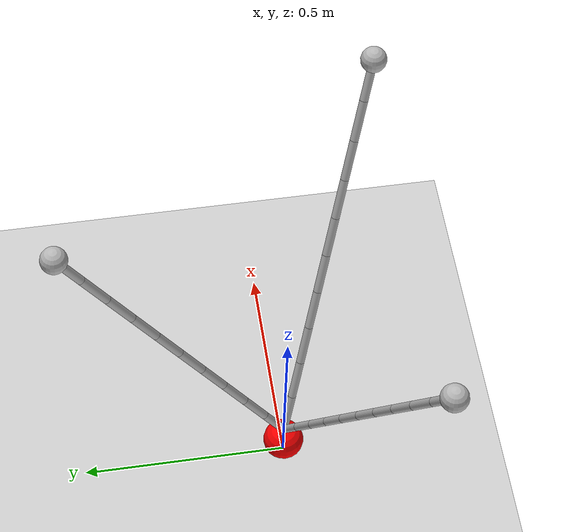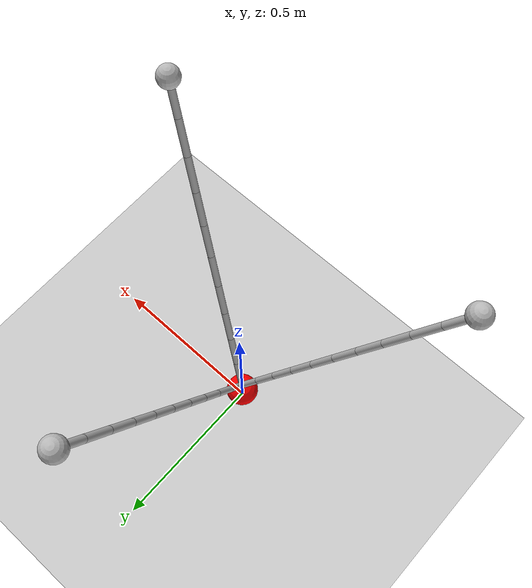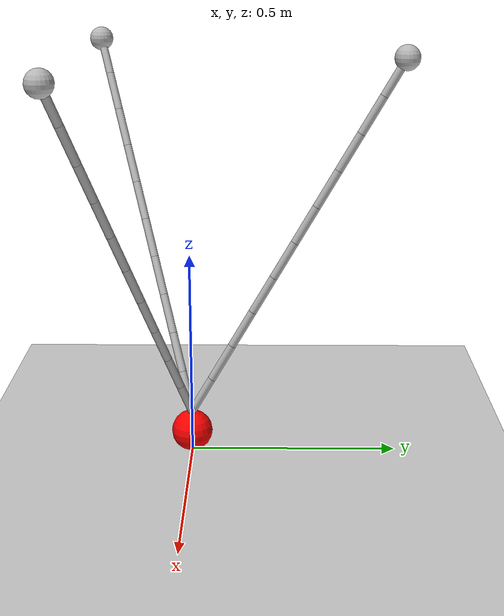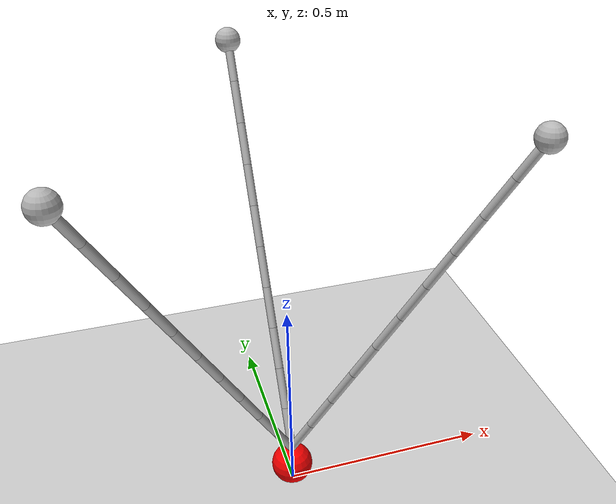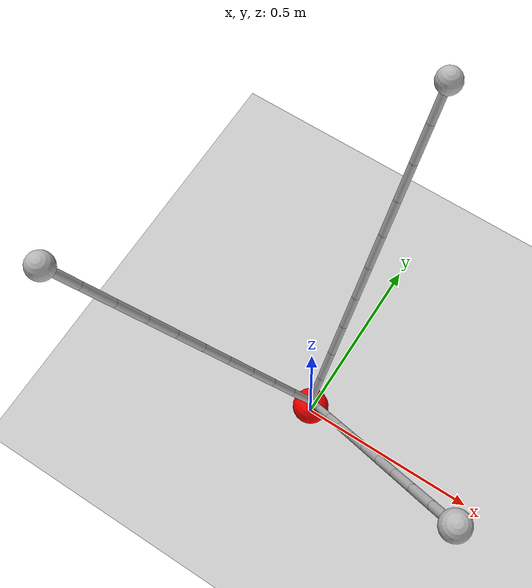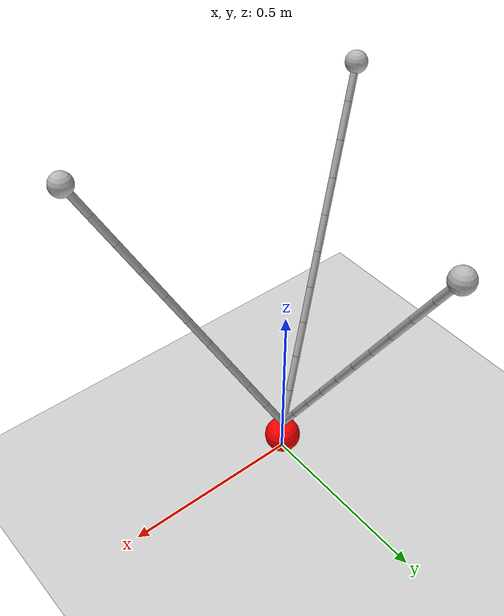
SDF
<sdf version='1.9'>
  <world name='mqsls'>
    <physics type="ode">
      <max_step_size>0.01</max_step_size>
      <real_time_factor>1.0</real_time_factor>
      <real_time_update_rate>250</real_time_update_rate>
    </physics>
    <plugin name='gz::sim::systems::Physics' filename='gz-sim-physics-system'/>
    <plugin name='gz::sim::systems::UserCommands' filename='gz-sim-user-commands-system'/>
    <plugin name='gz::sim::systems::SceneBroadcaster' filename='gz-sim-scene-broadcaster-system'/>
    <plugin name='gz::sim::systems::Contact' filename='gz-sim-contact-system'/>
    <plugin name='gz::sim::systems::Imu' filename='gz-sim-imu-system'/>
    <plugin name='gz::sim::systems::AirPressure' filename='gz-sim-air-pressure-system'/>
    <plugin name='gz::sim::systems::Sensors' filename='gz-sim-sensors-system'>
      <render_engine>ogre2</render_engine>
    </plugin>
    <gui fullscreen='false'>
      <plugin name='3D View' filename='GzScene3D'>
        <gz-gui>
          <title>3D View</title>
          <property type='bool' key='showTitleBar'>0</property>
          <property type='string' key='state'>docked</property>
        </gz-gui>
        <engine>ogre2</engine>
        <scene>scene</scene>
        <ambient_light>0.5984631152222222 0.5984631152222222 0.5984631152222222</ambient_light>
        <background_color>0.8984631152222222 0.8984631152222222 0.8984631152222222</background_color>
        <camera_pose>-6 0 6 0 0.5 0</camera_pose>
      </plugin>
      <plugin name='World control' filename='WorldControl'>
        <gz-gui>
          <title>World control</title>
          <property type='bool' key='showTitleBar'>0</property>
          <property type='bool' key='resizable'>0</property>
          <property type='double' key='height'>72</property>
          <property type='double' key='width'>121</property>
          <property type='double' key='z'>1</property>
          <property type='string' key='state'>floating</property>
          <anchors target='3D View'>
            <line own='left' target='left'/>
            <line own='bottom' target='bottom'/>
          </anchors>
        </gz-gui>
        <play_pause>1</play_pause>
        <step>1</step>
        <start_paused>1</start_paused>
      </plugin>
      <plugin name='World stats' filename='WorldStats'>
        <gz-gui>
          <title>World stats</title>
          <property type='bool' key='showTitleBar'>0</property>
          <property type='bool' key='resizable'>0</property>
          <property type='double' key='height'>110</property>
          <property type='double' key='width'>290</property>
          <property type='double' key='z'>1</property>
          <property type='string' key='state'>floating</property>
          <anchors target='3D View'>
            <line own='right' target='right'/>
            <line own='bottom' target='bottom'/>
          </anchors>
        </gz-gui>
        <sim_time>1</sim_time>
        <real_time>1</real_time>
        <real_time_factor>1</real_time_factor>
        <iterations>1</iterations>
      </plugin>
      <plugin name='Entity tree' filename='EntityTree'/>
    </gui>
    <gravity>0 0 -9.8</gravity>
    <magnetic_field>6e-06 2.3e-05 -4.2e-05</magnetic_field>
    <atmosphere type='adiabatic'/>
    <scene>
      <grid>false</grid>
      <ambient>0.4 0.4 0.4 1</ambient>
      <background>0.7 0.7 0.7 1</background>
      <shadows>true</shadows>
    </scene>
    <model name='ground_plane'>
      <static>true</static>
      <link name='link'>
        <collision name='collision'>
          <geometry>
            <plane>
              <normal>0 0 1</normal>
              <size>1 1</size>
            </plane>
          </geometry>
          <surface>
            <friction>
              <ode/>
            </friction>
            <bounce/>
            <contact/>
          </surface>
        </collision>
        <visual name='visual'>
          <geometry>
            <plane>
              <normal>0 0 1</normal>
              <size>100 100</size>
            </plane>
          </geometry>
          <material>
            <ambient>0.8 0.8 0.8 1</ambient>
            <diffuse>0.8 0.8 0.8 1</diffuse>
            <specular>0.8 0.8 0.8 1</specular>
          </material>
        </visual>
        <pose>0 0 0 0 -0 0</pose>
        <inertial>
          <pose>0 0 0 0 -0 0</pose>
          <mass>1</mass>
          <inertia>
            <ixx>1</ixx>
            <ixy>0</ixy>
            <ixz>0</ixz>
            <iyy>1</iyy>
            <iyz>0</iyz>
            <izz>1</izz>
          </inertia>
        </inertial>
        <enable_wind>false</enable_wind>
      </link>
      <pose>0 0 0 0 -0 0</pose>
      <self_collide>false</self_collide>
    </model>

    <!-- put your plugin here -->
    <!-- !!! IMPORTANT !!! The force on uav is always in ENU.-->
    <!-- mi = 1.5 mr = ~0 mL = 1 avg = 17.966666666666669-->
    <plugin
      filename="gz-sim-apply-link-wrench-system"
      name="gz::sim::systems::ApplyLinkWrench">
    </plugin>
    <!-- put your model here -->
    <!-- ball -->
    <model name="ball">
      <pose>0 0 .05 0 0 0</pose>
      <link name="ball_link">
        <collision name="ball_collision">
          <geometry>
            <sphere>
            <radius>0.05</radius>
            </sphere>
          </geometry>
        </collision>
        <visual name="ball_visual">
          <geometry>
            <sphere>
            <radius>0.05</radius>
            </sphere>
          </geometry>
          <material>
            <ambient>1 0 0 1</ambient> <!-- red -->
            <diffuse>1 0 0 1</diffuse>
            <specular>1 0 0 1</specular>
          </material>
        </visual>
        <inertial>
          <mass>1</mass> <!-- kg -->
          <inertia>
            <ixx>0.0001</ixx>
            <iyy>0.0001</iyy>
            <izz>0.0001</izz>
          </inertia>
        </inertial>
      </link>
    </model>
    <include>
      <name>x500_1</name>
      <pose>-0.433012701892219 -0.25 .966025403784439 0 0 0</pose>
      <uri>model://ideal_uav</uri>
    </include>
    <include>
      <name>rope_1</name>
      <pose>0 0 .1 0 -1.047197551196598 -2.617993877991494</pose>
      <uri>model://rope</uri>
    </include>
    <joint name="uav_joint1" type="fixed">
      <child>x500_1::base_link</child>
      <parent>rope_1::end_link</parent>
    </joint>
    <joint name="ball_joint1" type="fixed">
      <child>rope_1::begin_link</child>
      <parent>ball::ball_link</parent>
    </joint>

    <!-- addon -->
    <include>
      <name>x500_2</name>
      <pose>0 0.5 .966025403784439 0 0 0</pose>
      <uri>model://ideal_uav</uri>
    </include>
    <include>
      <name>x500_3</name>
      <pose>0.433012701892219 -0.25 .966025403784439 0 0 0</pose>
      <uri>model://ideal_uav</uri>
    </include>
    <include>
      <name>rope_2</name>
      <pose>0 0 .1 0 -1.047197551196598 1.570796326794897</pose>
      <uri>model://rope</uri>
    </include>
    <include>
      <name>rope_3</name>
      <pose>0 0 .1 0 -1.047197551196598 -0.523598775598299</pose>
      <uri>model://rope</uri>
    </include>
    <joint name="uav_joint2" type="fixed">
      <child>x500_2::base_link</child>
      <parent>rope_2::end_link</parent>
    </joint>
    <joint name="uav_joint3" type="fixed">
      <child>x500_3::base_link</child>
      <parent>rope_3::end_link</parent>
    </joint>
    <joint name="ball_joint2" type="fixed">
      <child>rope_2::begin_link</child>
      <parent>ball::ball_link</parent>
    </joint>
    <joint name="ball_joint3" type="fixed">
      <child>rope_3::begin_link</child>
      <parent>ball::ball_link</parent>
    </joint>

    <light name='sunUTC' type='directional'>
      <pose>0 0 500 0 -0 0</pose>
      <cast_shadows>true</cast_shadows>
      <intensity>1</intensity>
      <direction>0.001 0.625 -0.78</direction>
      <diffuse>0.904 0.904 0.904 1</diffuse>
      <specular>0.271 0.271 0.271 1</specular>
      <attenuation>
        <range>2000</range>
        <linear>0</linear>
        <constant>1</constant>
        <quadratic>0</quadratic>
      </attenuation>
      <spot>
        <inner_angle>0</inner_angle>
        <outer_angle>0</outer_angle>
        <falloff>0</falloff>
      </spot>
    </light>
  </world>
</sdf>

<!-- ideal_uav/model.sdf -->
<sdf version='1.9'>
  <model name='ideal_uav'>
    <link name='base_link'>
      <pose>0 0 0 0 0 0</pose>
      <inertial>
        <mass>1.5</mass>
        <inertia>
          <ixx>1.314e-02</ixx>
          <iyy>1.314e-02</iyy>
          <izz>2.375e-02</izz>
        </inertia>
      </inertial>
      <collision name='base_link_collision'>
        <geometry>
          <sphere>
            <radius>0.03</radius>
          </sphere>
        </geometry>
      </collision>
      <visual name='base_link_visual'>
        <geometry>
          <sphere>
            <radius>0.03</radius>
          </sphere>
        </geometry>
      </visual>
      <velocity_decay/>
    </link>
  </model>
</sdf>

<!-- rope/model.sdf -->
<sdf version='1.9'>
  <model name='rope'>
    <pose>0 0 2 0 0 0</pose>
    <static>false</static>
    <link name='begin_link'>
      <pose>0 0 0 0 0 0</pose>
      <inertial>
        <mass>0.001</mass>
        <inertia>
          <ixx>4.000000000000001e-08</ixx>
          <iyy>4.000000000000001e-08</iyy>
          <izz>4.000000000000001e-08</izz>
        </inertia>
      </inertial>
       <collision name='begin_link_collision'>
        <geometry>
          <sphere>
            <radius>0.01</radius>
          </sphere>
        </geometry>
      </collision>
      <visual name='begin_link_visual'>
        <geometry>
          <sphere>
            <radius>0.01</radius>
          </sphere>
        </geometry>
      </visual>
    </link>
    <link name='link_0'>
      <pose>0.05 0 0 0 1.570796326794896558 0</pose>
      <inertial>
        <mass>0.001</mass>
        <inertia>
          <ixx>8.583333333333335e-05</ixx>
          <iyy>8.583333333333335e-05</iyy>
          <izz>5e-06</izz>
        </inertia>
      </inertial>
       <collision name='link_0_collision'>
        <geometry>
          <cylinder>
            <length>0.1</length>
            <radius>0.01</radius>
          </cylinder>
        </geometry>
      </collision>
      <visual name='link_0_vis'>
        <geometry>
          <cylinder>
            <length>0.1</length>
            <radius>0.01</radius>
          </cylinder>
        </geometry>
      </visual>
      <velocity_decay>
        <linear>0.1</linear>
        <angular>0.1</angular>
      </velocity_decay>
    </link>
    <joint name='begin_joint_2' type='universal'>
      <pose relative_to='begin_link'/>
      <child>link_0</child>
      <parent>begin_link</parent>
      <axis>
        <xyz>1 0 0</xyz>
      </axis>
      <axis2>
        <xyz>0 1 0</xyz>
      </axis2>
    </joint>

    <link name='link_1'>
      <pose>0.15000000000000002 0 0 0 1.570796326794896558 0</pose>
      <inertial>
        <mass>0.001</mass>
        <inertia>
          <ixx>8.583333333333335e-05</ixx>
          <iyy>8.583333333333335e-05</iyy>
          <izz>5e-06</izz>
        </inertia>
      </inertial>
       <collision name='link_1_collision'>
        <geometry>
          <cylinder>
            <length>0.1</length>
            <radius>0.01</radius>
          </cylinder>
        </geometry>
      </collision>
      <visual name='link_1_vis'>
        <geometry>
          <cylinder>
            <length>0.1</length>
            <radius>0.01</radius>
          </cylinder>
        </geometry>
      </visual>
      <velocity_decay>
        <linear>0.1</linear>
        <angular>0.1</angular>
      </velocity_decay>
    </link>
    <joint name='joint_1_2' type='universal'>
      <pose relative_to='link_0'>0 0 0.05 0 0 0</pose>
      <child>link_1</child>
      <parent>link_0</parent>
      <axis>
        <xyz expressed_in='link_0'>1 0 0</xyz>
        <limit>
          <lower>-3.141592653589793</lower>
          <upper>3.141592653589793</upper>
          <effort>100</effort>
          <velocity>10</velocity>
        </limit>
        <dynamics>
          <damping>0.1</damping>
          <friction>0.0001</friction>
        </dynamics>
      </axis>
      <axis2>
        <xyz expressed_in='link_0'>0 1 0</xyz>
        <limit>
          <lower>-3.141592653589793</lower>
          <upper>3.141592653589793</upper>
          <effort>100</effort>
          <velocity>10</velocity>
        </limit>
        <dynamics>
          <damping>0.1</damping>
          <friction>0.0001</friction>
        </dynamics>
      </axis2>
    </joint>
    <link name='link_2'>
      <pose>0.25 0 0 0 1.570796326794896558 0</pose>
      <inertial>
        <mass>0.001</mass>
        <inertia>
          <ixx>8.583333333333335e-05</ixx>
          <iyy>8.583333333333335e-05</iyy>
          <izz>5e-06</izz>
        </inertia>
      </inertial>
       <collision name='link_2_collision'>
        <geometry>
          <cylinder>
            <length>0.1</length>
            <radius>0.01</radius>
          </cylinder>
        </geometry>
      </collision>
      <visual name='link_2_vis'>
        <geometry>
          <cylinder>
            <length>0.1</length>
            <radius>0.01</radius>
          </cylinder>
        </geometry>
      </visual>
      <velocity_decay>
        <linear>0.1</linear>
        <angular>0.1</angular>
      </velocity_decay>
    </link>
    <joint name='joint_2_2' type='universal'>
      <pose relative_to='link_1'>0 0 0.05 0 0 0</pose>
      <child>link_2</child>
      <parent>link_1</parent>
      <axis>
        <xyz expressed_in='link_1'>1 0 0</xyz>
        <limit>
          <lower>-3.141592653589793</lower>
          <upper>3.141592653589793</upper>
          <effort>100</effort>
          <velocity>10</velocity>
        </limit>
        <dynamics>
          <damping>0.1</damping>
          <friction>0.0001</friction>
        </dynamics>
      </axis>
      <axis2>
        <xyz expressed_in='link_1'>0 1 0</xyz>
        <limit>
          <lower>-3.141592653589793</lower>
          <upper>3.141592653589793</upper>
          <effort>100</effort>
          <velocity>10</velocity>
        </limit>
        <dynamics>
          <damping>0.1</damping>
          <friction>0.0001</friction>
        </dynamics>
      </axis2>
    </joint>
    <link name='link_3'>
      <pose>0.35000000000000003 0 0 0 1.570796326794896558 0</pose>
      <inertial>
        <mass>0.001</mass>
        <inertia>
          <ixx>8.583333333333335e-05</ixx>
          <iyy>8.583333333333335e-05</iyy>
          <izz>5e-06</izz>
        </inertia>
      </inertial>
       <collision name='link_3_collision'>
        <geometry>
          <cylinder>
            <length>0.1</length>
            <radius>0.01</radius>
          </cylinder>
        </geometry>
      </collision>
      <visual name='link_3_vis'>
        <geometry>
          <cylinder>
            <length>0.1</length>
            <radius>0.01</radius>
          </cylinder>
        </geometry>
      </visual>
      <velocity_decay>
        <linear>0.1</linear>
        <angular>0.1</angular>
      </velocity_decay>
    </link>
    <joint name='joint_3_2' type='universal'>
      <pose relative_to='link_2'>0 0 0.05 0 0 0</pose>
      <child>link_3</child>
      <parent>link_2</parent>
      <axis>
        <xyz expressed_in='link_2'>1 0 0</xyz>
        <limit>
          <lower>-3.141592653589793</lower>
          <upper>3.141592653589793</upper>
          <effort>100</effort>
          <velocity>10</velocity>
        </limit>
        <dynamics>
          <damping>0.1</damping>
          <friction>0.0001</friction>
        </dynamics>
      </axis>
      <axis2>
        <xyz expressed_in='link_2'>0 1 0</xyz>
        <limit>
          <lower>-3.141592653589793</lower>
          <upper>3.141592653589793</upper>
          <effort>100</effort>
          <velocity>10</velocity>
        </limit>
        <dynamics>
          <damping>0.1</damping>
          <friction>0.0001</friction>
        </dynamics>
      </axis2>
    </joint>
    <link name='link_4'>
      <pose>0.45 0 0 0 1.570796326794896558 0</pose>
      <inertial>
        <mass>0.001</mass>
        <inertia>
          <ixx>8.583333333333335e-05</ixx>
          <iyy>8.583333333333335e-05</iyy>
          <izz>5e-06</izz>
        </inertia>
      </inertial>
       <collision name='link_4_collision'>
        <geometry>
          <cylinder>
            <length>0.1</length>
            <radius>0.01</radius>
          </cylinder>
        </geometry>
      </collision>
      <visual name='link_4_vis'>
        <geometry>
          <cylinder>
            <length>0.1</length>
            <radius>0.01</radius>
          </cylinder>
        </geometry>
      </visual>
      <velocity_decay>
        <linear>0.1</linear>
        <angular>0.1</angular>
      </velocity_decay>
    </link>
    <joint name='joint_4_2' type='universal'>
      <pose relative_to='link_3'>0 0 0.05 0 0 0</pose>
      <child>link_4</child>
      <parent>link_3</parent>
      <axis>
        <xyz expressed_in='link_3'>1 0 0</xyz>
        <limit>
          <lower>-3.141592653589793</lower>
          <upper>3.141592653589793</upper>
          <effort>100</effort>
          <velocity>10</velocity>
        </limit>
        <dynamics>
          <damping>0.1</damping>
          <friction>0.0001</friction>
        </dynamics>
      </axis>
      <axis2>
        <xyz expressed_in='link_3'>0 1 0</xyz>
        <limit>
          <lower>-3.141592653589793</lower>
          <upper>3.141592653589793</upper>
          <effort>100</effort>
          <velocity>10</velocity>
        </limit>
        <dynamics>
          <damping>0.1</damping>
          <friction>0.0001</friction>
        </dynamics>
      </axis2>
    </joint>
    <link name='link_5'>
      <pose>0.55 0 0 0 1.570796326794896558 0</pose>
      <inertial>
        <mass>0.001</mass>
        <inertia>
          <ixx>8.583333333333335e-05</ixx>
          <iyy>8.583333333333335e-05</iyy>
          <izz>5e-06</izz>
        </inertia>
      </inertial>
       <collision name='link_5_collision'>
        <geometry>
          <cylinder>
            <length>0.1</length>
            <radius>0.01</radius>
          </cylinder>
        </geometry>
      </collision>
      <visual name='link_5_vis'>
        <geometry>
          <cylinder>
            <length>0.1</length>
            <radius>0.01</radius>
          </cylinder>
        </geometry>
      </visual>
      <velocity_decay>
        <linear>0.1</linear>
        <angular>0.1</angular>
      </velocity_decay>
    </link>
    <joint name='joint_5_2' type='universal'>
      <pose relative_to='link_4'>0 0 0.05 0 0 0</pose>
      <child>link_5</child>
      <parent>link_4</parent>
      <axis>
        <xyz expressed_in='link_4'>1 0 0</xyz>
        <limit>
          <lower>-3.141592653589793</lower>
          <upper>3.141592653589793</upper>
          <effort>100</effort>
          <velocity>10</velocity>
        </limit>
        <dynamics>
          <damping>0.1</damping>
          <friction>0.0001</friction>
        </dynamics>
      </axis>
      <axis2>
        <xyz expressed_in='link_4'>0 1 0</xyz>
        <limit>
          <lower>-3.141592653589793</lower>
          <upper>3.141592653589793</upper>
          <effort>100</effort>
          <velocity>10</velocity>
        </limit>
        <dynamics>
          <damping>0.1</damping>
          <friction>0.0001</friction>
        </dynamics>
      </axis2>
    </joint>
    <link name='link_6'>
      <pose>0.6500000000000001 0 0 0 1.570796326794896558 0</pose>
      <inertial>
        <mass>0.001</mass>
        <inertia>
          <ixx>8.583333333333335e-05</ixx>
          <iyy>8.583333333333335e-05</iyy>
          <izz>5e-06</izz>
        </inertia>
      </inertial>
       <collision name='link_6_collision'>
        <geometry>
          <cylinder>
            <length>0.1</length>
            <radius>0.01</radius>
          </cylinder>
        </geometry>
      </collision>
      <visual name='link_6_vis'>
        <geometry>
          <cylinder>
            <length>0.1</length>
            <radius>0.01</radius>
          </cylinder>
        </geometry>
      </visual>
      <velocity_decay>
        <linear>0.1</linear>
        <angular>0.1</angular>
      </velocity_decay>
    </link>
    <joint name='joint_6_2' type='universal'>
      <pose relative_to='link_5'>0 0 0.05 0 0 0</pose>
      <child>link_6</child>
      <parent>link_5</parent>
      <axis>
        <xyz expressed_in='link_5'>1 0 0</xyz>
        <limit>
          <lower>-3.141592653589793</lower>
          <upper>3.141592653589793</upper>
          <effort>100</effort>
          <velocity>10</velocity>
        </limit>
        <dynamics>
          <damping>0.1</damping>
          <friction>0.0001</friction>
        </dynamics>
      </axis>
      <axis2>
        <xyz expressed_in='link_5'>0 1 0</xyz>
        <limit>
          <lower>-3.141592653589793</lower>
          <upper>3.141592653589793</upper>
          <effort>100</effort>
          <velocity>10</velocity>
        </limit>
        <dynamics>
          <damping>0.1</damping>
          <friction>0.0001</friction>
        </dynamics>
      </axis2>
    </joint>
    <link name='link_7'>
      <pose>0.7500000000000001 0 0 0 1.570796326794896558 0</pose>
      <inertial>
        <mass>0.001</mass>
        <inertia>
          <ixx>8.583333333333335e-05</ixx>
          <iyy>8.583333333333335e-05</iyy>
          <izz>5e-06</izz>
        </inertia>
      </inertial>
       <collision name='link_7_collision'>
        <geometry>
          <cylinder>
            <length>0.1</length>
            <radius>0.01</radius>
          </cylinder>
        </geometry>
      </collision>
      <visual name='link_7_vis'>
        <geometry>
          <cylinder>
            <length>0.1</length>
            <radius>0.01</radius>
          </cylinder>
        </geometry>
      </visual>
      <velocity_decay>
        <linear>0.1</linear>
        <angular>0.1</angular>
      </velocity_decay>
    </link>
    <joint name='joint_7_2' type='universal'>
      <pose relative_to='link_6'>0 0 0.05 0 0 0</pose>
      <child>link_7</child>
      <parent>link_6</parent>
      <axis>
        <xyz expressed_in='link_6'>1 0 0</xyz>
        <limit>
          <lower>-3.141592653589793</lower>
          <upper>3.141592653589793</upper>
          <effort>100</effort>
          <velocity>10</velocity>
        </limit>
        <dynamics>
          <damping>0.1</damping>
          <friction>0.0001</friction>
        </dynamics>
      </axis>
      <axis2>
        <xyz expressed_in='link_6'>0 1 0</xyz>
        <limit>
          <lower>-3.141592653589793</lower>
          <upper>3.141592653589793</upper>
          <effort>100</effort>
          <velocity>10</velocity>
        </limit>
        <dynamics>
          <damping>0.1</damping>
          <friction>0.0001</friction>
        </dynamics>
      </axis2>
    </joint>
    <link name='link_8'>
      <pose>0.8500000000000001 0 0 0 1.570796326794896558 0</pose>
      <inertial>
        <mass>0.001</mass>
        <inertia>
          <ixx>8.583333333333335e-05</ixx>
          <iyy>8.583333333333335e-05</iyy>
          <izz>5e-06</izz>
        </inertia>
      </inertial>
       <collision name='link_8_collision'>
        <geometry>
          <cylinder>
            <length>0.1</length>
            <radius>0.01</radius>
          </cylinder>
        </geometry>
      </collision>
      <visual name='link_8_vis'>
        <geometry>
          <cylinder>
            <length>0.1</length>
            <radius>0.01</radius>
          </cylinder>
        </geometry>
      </visual>
      <velocity_decay>
        <linear>0.1</linear>
        <angular>0.1</angular>
      </velocity_decay>
    </link>
    <joint name='joint_8_2' type='universal'>
      <pose relative_to='link_7'>0 0 0.05 0 0 0</pose>
      <child>link_8</child>
      <parent>link_7</parent>
      <axis>
        <xyz expressed_in='link_7'>1 0 0</xyz>
        <limit>
          <lower>-3.141592653589793</lower>
          <upper>3.141592653589793</upper>
          <effort>100</effort>
          <velocity>10</velocity>
        </limit>
        <dynamics>
          <damping>0.1</damping>
          <friction>0.0001</friction>
        </dynamics>
      </axis>
      <axis2>
        <xyz expressed_in='link_7'>0 1 0</xyz>
        <limit>
          <lower>-3.141592653589793</lower>
          <upper>3.141592653589793</upper>
          <effort>100</effort>
          <velocity>10</velocity>
        </limit>
        <dynamics>
          <damping>0.1</damping>
          <friction>0.0001</friction>
        </dynamics>
      </axis2>
    </joint>
    <link name='link_9'>
      <pose>0.9500000000000001 0 0 0 1.570796326794896558 0</pose>
      <inertial>
        <mass>0.001</mass>
        <inertia>
          <ixx>8.583333333333335e-05</ixx>
          <iyy>8.583333333333335e-05</iyy>
          <izz>5e-06</izz>
        </inertia>
      </inertial>
       <collision name='link_9_collision'>
        <geometry>
          <cylinder>
            <length>0.1</length>
            <radius>0.01</radius>
          </cylinder>
        </geometry>
      </collision>
      <visual name='link_9_vis'>
        <geometry>
          <cylinder>
            <length>0.1</length>
            <radius>0.01</radius>
          </cylinder>
        </geometry>
      </visual>
      <velocity_decay>
        <linear>0.1</linear>
        <angular>0.1</angular>
      </velocity_decay>
    </link>
    <joint name='joint_9_2' type='universal'>
      <pose relative_to='link_8'>0 0 0.05 0 0 0</pose>
      <child>link_9</child>
      <parent>link_8</parent>
      <axis>
        <xyz expressed_in='link_8'>1 0 0</xyz>
        <limit>
          <lower>-3.141592653589793</lower>
          <upper>3.141592653589793</upper>
          <effort>100</effort>
          <velocity>10</velocity>
        </limit>
        <dynamics>
          <damping>0.1</damping>
          <friction>0.0001</friction>
        </dynamics>
      </axis>
      <axis2>
        <xyz expressed_in='link_8'>0 1 0</xyz>
        <limit>
          <lower>-3.141592653589793</lower>
          <upper>3.141592653589793</upper>
          <effort>100</effort>
          <velocity>10</velocity>
        </limit>
        <dynamics>
          <damping>0.1</damping>
          <friction>0.0001</friction>
        </dynamics>
      </axis2>
    </joint>
    <link name='end_link'>
      <pose>1 0 0 0 0 0</pose>
      <inertial>
        <mass>0.001</mass>
        <inertia>
          <ixx>4.000000000000001e-08</ixx>
          <iyy>4.000000000000001e-08</iyy>
          <izz>4.000000000000001e-08</izz>
        </inertia>
      </inertial>
       <collision name='end_link_collision'>
        <geometry>
          <sphere>
            <radius>0.01</radius>
          </sphere>
        </geometry>
      </collision>
      <visual name='end_link_visual'>
        <geometry>
          <sphere>
            <radius>0.01</radius>
          </sphere>
        </geometry>
      </visual>
    </link>
    <joint name='joint_end_1' type='universal'>
      <pose relative_to='end_link'/>
      <child>end_link</child>
      <parent>link_9</parent>
      <axis>
        <xyz>0 0 1</xyz>
      </axis>
      <axis2>
        <xyz>0 1 0</xyz>
      </axis2>
    </joint>
  </model>
</sdf>
